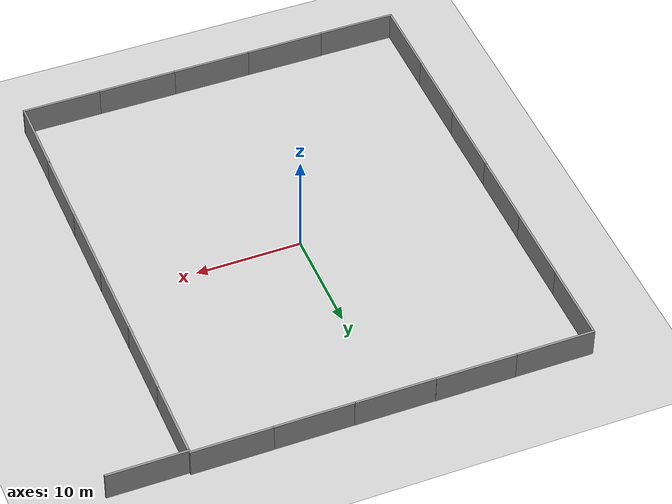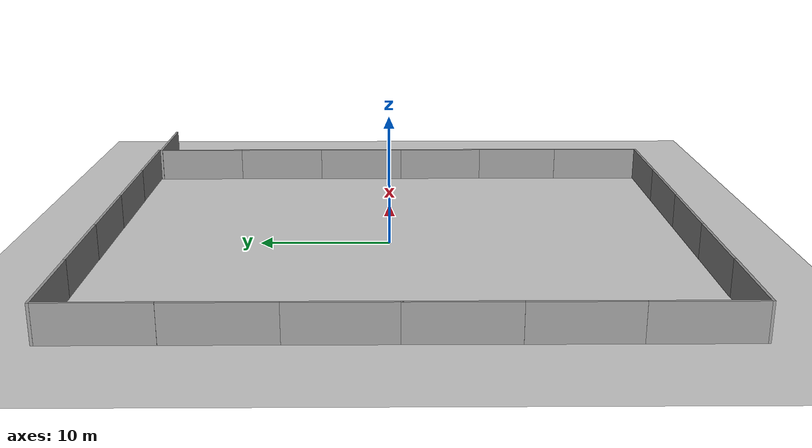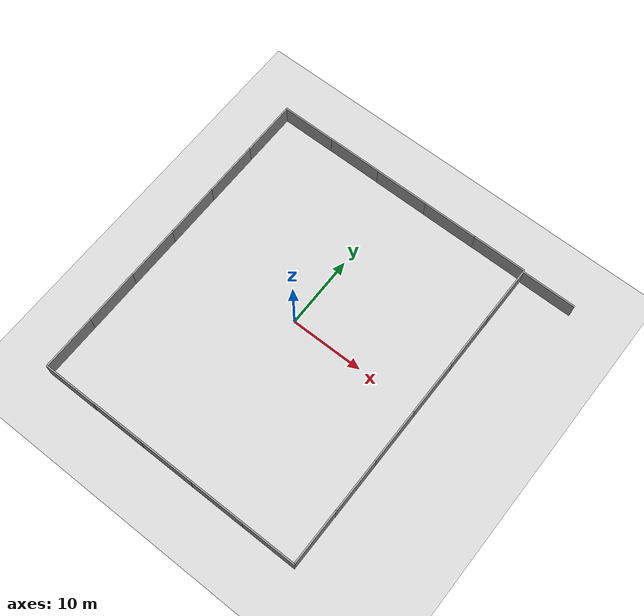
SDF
<sdf version="1.7">
 <world name="default">
  <light name="sun" type="directional">
   <pose>0 0 10 0 -0 0</pose>
   <diffuse>0.8 0.8 0.8 1</diffuse>
   <specular>0.2 0.2 0.2 1</specular>
   <attenuation>
    <range>1000</range>
    <constant>0.9</constant>
    <linear>0.01</linear>
    <quadratic>0.001</quadratic>
   </attenuation>
   <direction>-0.5 0.1 -0.9</direction>
   <spot><inner_angle>0</inner_angle><outer_angle>0</outer_angle><falloff>0</falloff></spot>
  </light>
  <model name="ground_plane">
   <static>1</static>
   <link name="link">
    <collision name="collision">
     <geometry><plane><normal>0 0 1</normal><size>100 100</size></plane></geometry>
     <surface><friction><ode><mu>100</mu><mu2>50</mu2></ode></friction></surface>
    </collision>
    <visual name="visual">
     <cast_shadows>0</cast_shadows>
     <geometry><plane><normal>0 0 1</normal><size>100 100</size></plane></geometry>
     <material>
      <script><uri>file://media/materials/scripts/gazebo.material</uri><name>Gazebo/Grey</name></script>
     </material>
    </visual>
   </link>
  </model>
  <gravity>0 0 -9.8</gravity>
  <magnetic_field>6e-06 2.3e-05 -4.2e-05</magnetic_field>
  <atmosphere type="adiabatic"/>
  <physics type="ode">
   <max_step_size>0.001</max_step_size>
   <real_time_factor>1</real_time_factor>
   <real_time_update_rate>1000</real_time_update_rate>
  </physics>
  <scene><ambient>0.4 0.4 0.4 1</ambient><background>0.7 0.7 0.7 1</background><shadows>1</shadows></scene>
  <spherical_coordinates>
   <surface_model>EARTH_WGS84</surface_model>
   <latitude_deg>50.7163055556</latitude_deg>
   <longitude_deg>10.4501444444</longitude_deg>
   <elevation>0</elevation>
   <heading_deg>180</heading_deg>
  </spherical_coordinates>
  <light name="user_directional_light_0" type="directional">
   <pose>-5.63054 -11.2657 1 0 -0 0</pose>
   <diffuse>0.5 0.5 0.5 1</diffuse>
   <specular>0.1 0.1 0.1 1</specular>
   <direction>0.1 0.1 -0.9</direction>
   <attenuation>
    <range>20</range>
    <constant>0.5</constant>
    <linear>0.01</linear>
    <quadratic>0.001</quadratic>
   </attenuation>
   <spot><inner_angle>0</inner_angle><outer_angle>0</outer_angle><falloff>0</falloff></spot>
  </light>
  <light name="user_directional_light_1" type="directional">
   <pose>10.4762 9.60881 1 0 -0 0</pose>
   <diffuse>0.5 0.5 0.5 1</diffuse>
   <specular>0.1 0.1 0.1 1</specular>
   <direction>0.1 0.1 -0.9</direction>
   <attenuation>
    <range>20</range>
    <constant>0.5</constant>
    <linear>0.01</linear>
    <quadratic>0.001</quadratic>
   </attenuation>
   <spot><inner_angle>0</inner_angle><outer_angle>0</outer_angle><falloff>0</falloff></spot>
  </light>
  <audio><device>default</device></audio>
  <model name="grey_wall">
   <static>1</static>
   <link name="link">
    <pose>0 0 1.4 0 -0 0</pose>
    <collision name="collision"><geometry><box><size>7.5 0.2 2.8</size></box></geometry></collision>
    <visual name="visual">
     <cast_shadows>0</cast_shadows>
     <geometry><box><size>7.5 0.2 2.8</size></box></geometry>
     <material>
      <script>
       <uri>model://grey_wall/materials/scripts</uri>
       <uri>model://grey_wall/materials/textures</uri>
       <name>vrc/grey_wall</name>
      </script>
     </material>
    </visual>
   </link>
   <pose>-14.9489 -23.2032 0 0 -0 0</pose>
  </model>
  <model name="grey_wall_clone">
   <static>1</static>
   <link name="link">
    <pose>0 0 1.4 0 -0 0</pose>
    <collision name="collision"><geometry><box><size>7.5 0.2 2.8</size></box></geometry></collision>
    <visual name="visual">
     <cast_shadows>0</cast_shadows>
     <geometry><box><size>7.5 0.2 2.8</size></box></geometry>
     <material>
      <script>
       <uri>model://grey_wall/materials/scripts</uri>
       <uri>model://grey_wall/materials/textures</uri>
       <name>vrc/grey_wall</name>
      </script>
     </material>
    </visual>
   </link>
   <pose>-7.5546 -23.1759 0 0 -0 0</pose>
  </model>
  <model name="grey_wall_clone_0">
   <static>1</static>
   <link name="link">
    <pose>0 0 1.4 0 -0 0</pose>
    <collision name="collision"><geometry><box><size>7.5 0.2 2.8</size></box></geometry></collision>
    <visual name="visual">
     <cast_shadows>0</cast_shadows>
     <geometry><box><size>7.5 0.2 2.8</size></box></geometry>
     <material>
      <script>
       <uri>model://grey_wall/materials/scripts</uri>
       <uri>model://grey_wall/materials/textures</uri>
       <name>vrc/grey_wall</name>
      </script>
     </material>
    </visual>
   </link>
   <pose>-0.078213 -23.1732 0 0 -0 0</pose>
  </model>
  <model name="grey_wall_clone_1">
   <static>1</static>
   <link name="link">
    <pose>0 0 1.4 0 -0 0</pose>
    <collision name="collision"><geometry><box><size>7.5 0.2 2.8</size></box></geometry></collision>
    <visual name="visual">
     <cast_shadows>0</cast_shadows>
     <geometry><box><size>7.5 0.2 2.8</size></box></geometry>
     <material>
      <script>
       <uri>model://grey_wall/materials/scripts</uri>
       <uri>model://grey_wall/materials/textures</uri>
       <name>vrc/grey_wall</name>
      </script>
     </material>
    </visual>
   </link>
   <pose>7.38315 -23.1704 0 0 -0 0</pose>
  </model>
  <model name="grey_wall_clone_2">
   <static>1</static>
   <link name="link">
    <pose>0 0 1.4 0 -0 0</pose>
    <collision name="collision"><geometry><box><size>7.5 0.2 2.8</size></box></geometry></collision>
    <visual name="visual">
     <cast_shadows>0</cast_shadows>
     <geometry><box><size>7.5 0.2 2.8</size></box></geometry>
     <material>
      <script>
       <uri>model://grey_wall/materials/scripts</uri>
       <uri>model://grey_wall/materials/textures</uri>
       <name>vrc/grey_wall</name>
      </script>
     </material>
    </visual>
   </link>
   <pose>14.8815 -23.168 0 0 -0 0</pose>
  </model>
  <model name="grey_wall_clone_3">
   <static>1</static>
   <link name="link">
    <pose>0 0 1.4 0 -0 0</pose>
    <collision name="collision"><geometry><box><size>7.5 0.2 2.8</size></box></geometry></collision>
    <visual name="visual">
     <cast_shadows>0</cast_shadows>
     <geometry><box><size>7.5 0.2 2.8</size></box></geometry>
     <material>
      <script>
       <uri>model://grey_wall/materials/scripts</uri>
       <uri>model://grey_wall/materials/textures</uri>
       <name>vrc/grey_wall</name>
      </script>
     </material>
    </visual>
   </link>
   <pose>18.5254 -19.3083 0 0 -0 1.57178</pose>
  </model>
  <model name="grey_wall_clone_3_clone">
   <static>1</static>
   <link name="link">
    <pose>0 0 1.4 0 -0 0</pose>
    <collision name="collision"><geometry><box><size>7.5 0.2 2.8</size></box></geometry></collision>
    <visual name="visual">
     <cast_shadows>0</cast_shadows>
     <geometry><box><size>7.5 0.2 2.8</size></box></geometry>
     <material>
      <script>
       <uri>model://grey_wall/materials/scripts</uri>
       <uri>model://grey_wall/materials/textures</uri>
       <name>vrc/grey_wall</name>
      </script>
     </material>
    </visual>
   </link>
   <pose>18.5322 -12.1204 0 0 -0 1.57178</pose>
  </model>
  <model name="grey_wall_clone_3_clone_0">
   <static>1</static>
   <link name="link">
    <pose>0 0 1.4 0 -0 0</pose>
    <collision name="collision"><geometry><box><size>7.5 0.2 2.8</size></box></geometry></collision>
    <visual name="visual">
     <cast_shadows>0</cast_shadows>
     <geometry><box><size>7.5 0.2 2.8</size></box></geometry>
     <material>
      <script>
       <uri>model://grey_wall/materials/scripts</uri>
       <uri>model://grey_wall/materials/textures</uri>
       <name>vrc/grey_wall</name>
      </script>
     </material>
    </visual>
   </link>
   <pose>18.5177 -4.73008 0 0 -0 1.57178</pose>
  </model>
  <model name="grey_wall_clone_3_clone_1">
   <static>1</static>
   <link name="link">
    <pose>0 0 1.4 0 -0 0</pose>
    <collision name="collision"><geometry><box><size>7.5 0.2 2.8</size></box></geometry></collision>
    <visual name="visual">
     <cast_shadows>0</cast_shadows>
     <geometry><box><size>7.5 0.2 2.8</size></box></geometry>
     <material>
      <script>
       <uri>model://grey_wall/materials/scripts</uri>
       <uri>model://grey_wall/materials/textures</uri>
       <name>vrc/grey_wall</name>
      </script>
     </material>
    </visual>
   </link>
   <pose>18.5034 2.69779 0 0 -0 1.57178</pose>
  </model>
  <model name="grey_wall_clone_3_clone_2">
   <static>1</static>
   <link name="link">
    <pose>0 0 1.4 0 -0 0</pose>
    <collision name="collision"><geometry><box><size>7.5 0.2 2.8</size></box></geometry></collision>
    <visual name="visual">
     <cast_shadows>0</cast_shadows>
     <geometry><box><size>7.5 0.2 2.8</size></box></geometry>
     <material>
      <script>
       <uri>model://grey_wall/materials/scripts</uri>
       <uri>model://grey_wall/materials/textures</uri>
       <name>vrc/grey_wall</name>
      </script>
     </material>
    </visual>
   </link>
   <pose>18.4886 10.1808 0 0 -0 1.57178</pose>
  </model>
  <model name="grey_wall_clone_3_clone_3">
   <static>1</static>
   <link name="link">
    <pose>0 0 1.4 0 -0 0</pose>
    <collision name="collision"><geometry><box><size>7.5 0.2 2.8</size></box></geometry></collision>
    <visual name="visual">
     <cast_shadows>0</cast_shadows>
     <geometry><box><size>7.5 0.2 2.8</size></box></geometry>
     <material>
      <script>
       <uri>model://grey_wall/materials/scripts</uri>
       <uri>model://grey_wall/materials/textures</uri>
       <name>vrc/grey_wall</name>
      </script>
     </material>
    </visual>
   </link>
   <pose>18.487 17.6241 0 0 -0 1.57178</pose>
  </model>
  <model name="grey_wall_clone_3_clone_4">
   <static>1</static>
   <link name="link">
    <pose>0 0 1.4 0 -0 0</pose>
    <collision name="collision"><geometry><box><size>7.5 0.2 2.8</size></box></geometry></collision>
    <visual name="visual">
     <cast_shadows>0</cast_shadows>
     <geometry><box><size>7.5 0.2 2.8</size></box></geometry>
     <material>
      <script>
       <uri>model://grey_wall/materials/scripts</uri>
       <uri>model://grey_wall/materials/textures</uri>
       <name>vrc/grey_wall</name>
      </script>
     </material>
    </visual>
   </link>
   <pose>-18.6048 -19.3704 0 0 -0 1.57178</pose>
  </model>
  <model name="grey_wall_clone_3_clone_5">
   <static>1</static>
   <link name="link">
    <pose>0 0 1.4 0 -0 0</pose>
    <collision name="collision"><geometry><box><size>7.5 0.2 2.8</size></box></geometry></collision>
    <visual name="visual">
     <cast_shadows>0</cast_shadows>
     <geometry><box><size>7.5 0.2 2.8</size></box></geometry>
     <material>
      <script>
       <uri>model://grey_wall/materials/scripts</uri>
       <uri>model://grey_wall/materials/textures</uri>
       <name>vrc/grey_wall</name>
      </script>
     </material>
    </visual>
   </link>
   <pose>-18.6067 -11.969 0 0 -0 1.57178</pose>
  </model>
  <model name="grey_wall_clone_3_clone_6">
   <static>1</static>
   <link name="link">
    <pose>0 0 1.4 0 -0 0</pose>
    <collision name="collision"><geometry><box><size>7.5 0.2 2.8</size></box></geometry></collision>
    <visual name="visual">
     <cast_shadows>0</cast_shadows>
     <geometry><box><size>7.5 0.2 2.8</size></box></geometry>
     <material>
      <script>
       <uri>model://grey_wall/materials/scripts</uri>
       <uri>model://grey_wall/materials/textures</uri>
       <name>vrc/grey_wall</name>
      </script>
     </material>
    </visual>
   </link>
   <pose>-18.5966 -4.47081 0 0 -0 1.57178</pose>
  </model>
  <model name="grey_wall_clone_3_clone_7">
   <static>1</static>
   <link name="link">
    <pose>0 0 1.4 0 -0 0</pose>
    <collision name="collision"><geometry><box><size>7.5 0.2 2.8</size></box></geometry></collision>
    <visual name="visual">
     <cast_shadows>0</cast_shadows>
     <geometry><box><size>7.5 0.2 2.8</size></box></geometry>
     <material>
      <script>
       <uri>model://grey_wall/materials/scripts</uri>
       <uri>model://grey_wall/materials/textures</uri>
       <name>vrc/grey_wall</name>
      </script>
     </material>
    </visual>
   </link>
   <pose>-18.5952 2.842 0 0 -0 1.57178</pose>
  </model>
  <model name="grey_wall_clone_3_clone_8">
   <static>1</static>
   <link name="link">
    <pose>0 0 1.4 0 -0 0</pose>
    <collision name="collision"><geometry><box><size>7.5 0.2 2.8</size></box></geometry></collision>
    <visual name="visual">
     <cast_shadows>0</cast_shadows>
     <geometry><box><size>7.5 0.2 2.8</size></box></geometry>
     <material>
      <script>
       <uri>model://grey_wall/materials/scripts</uri>
       <uri>model://grey_wall/materials/textures</uri>
       <name>vrc/grey_wall</name>
      </script>
     </material>
    </visual>
   </link>
   <pose>-18.5888 10.3438 0 0 -0 1.57178</pose>
  </model>
  <model name="grey_wall_clone_3_clone_9">
   <static>1</static>
   <link name="link">
    <pose>0 0 1.4 0 -0 0</pose>
    <collision name="collision"><geometry><box><size>7.5 0.2 2.8</size></box></geometry></collision>
    <visual name="visual">
     <cast_shadows>0</cast_shadows>
     <geometry><box><size>7.5 0.2 2.8</size></box></geometry>
     <material>
      <script>
       <uri>model://grey_wall/materials/scripts</uri>
       <uri>model://grey_wall/materials/textures</uri>
       <name>vrc/grey_wall</name>
      </script>
     </material>
    </visual>
   </link>
   <pose>-18.594 17.8486 0 0 -0 1.57178</pose>
  </model>
  <model name="grey_wall_clone_4">
   <static>1</static>
   <link name="link">
    <pose>0 0 1.4 0 -0 0</pose>
    <collision name="collision"><geometry><box><size>7.5 0.2 2.8</size></box></geometry></collision>
    <visual name="visual">
     <cast_shadows>0</cast_shadows>
     <geometry><box><size>7.5 0.2 2.8</size></box></geometry>
     <material>
      <script>
       <uri>model://grey_wall/materials/scripts</uri>
       <uri>model://grey_wall/materials/textures</uri>
       <name>vrc/grey_wall</name>
      </script>
     </material>
    </visual>
   </link>
   <pose>-14.9356 21.7034 0 0 -0 0</pose>
  </model>
  <model name="grey_wall_clone_5">
   <static>1</static>
   <link name="link">
    <pose>0 0 1.4 0 -0 0</pose>
    <collision name="collision"><geometry><box><size>7.5 0.2 2.8</size></box></geometry></collision>
    <visual name="visual">
     <cast_shadows>0</cast_shadows>
     <geometry><box><size>7.5 0.2 2.8</size></box></geometry>
     <material>
      <script>
       <uri>model://grey_wall/materials/scripts</uri>
       <uri>model://grey_wall/materials/textures</uri>
       <name>vrc/grey_wall</name>
      </script>
     </material>
    </visual>
   </link>
   <pose>-7.52812 21.7162 0 0 -0 0</pose>
  </model>
  <model name="grey_wall_clone_6">
   <static>1</static>
   <link name="link">
    <pose>0 0 1.4 0 -0 0</pose>
    <collision name="collision"><geometry><box><size>7.5 0.2 2.8</size></box></geometry></collision>
    <visual name="visual">
     <cast_shadows>0</cast_shadows>
     <geometry><box><size>7.5 0.2 2.8</size></box></geometry>
     <material>
      <script>
       <uri>model://grey_wall/materials/scripts</uri>
       <uri>model://grey_wall/materials/textures</uri>
       <name>vrc/grey_wall</name>
      </script>
     </material>
    </visual>
   </link>
   <pose>-0.03151 21.6973 0 0 -0 0</pose>
  </model>
  <model name="grey_wall_clone_7">
   <static>1</static>
   <link name="link">
    <pose>0 0 1.4 0 -0 0</pose>
    <collision name="collision"><geometry><box><size>7.5 0.2 2.8</size></box></geometry></collision>
    <visual name="visual">
     <cast_shadows>0</cast_shadows>
     <geometry><box><size>7.5 0.2 2.8</size></box></geometry>
     <material>
      <script>
       <uri>model://grey_wall/materials/scripts</uri>
       <uri>model://grey_wall/materials/textures</uri>
       <name>vrc/grey_wall</name>
      </script>
     </material>
    </visual>
   </link>
   <pose>7.4004 21.686 0 0 -0 0</pose>
  </model>
  <model name="grey_wall_clone_8">
   <static>1</static>
   <link name="link">
    <pose>0 0 1.4 0 -0 0</pose>
    <collision name="collision"><geometry><box><size>7.5 0.2 2.8</size></box></geometry></collision>
    <visual name="visual">
     <cast_shadows>0</cast_shadows>
     <geometry><box><size>7.5 0.2 2.8</size></box></geometry>
     <material>
      <script>
       <uri>model://grey_wall/materials/scripts</uri>
       <uri>model://grey_wall/materials/textures</uri>
       <name>vrc/grey_wall</name>
      </script>
     </material>
    </visual>
   </link>
   <pose>14.7533 21.697 0 0 -0 0</pose>
  </model>
  <model name="grey_wall_clone_9">
   <static>1</static>
   <link name="link">
    <pose>0 0 1.4 0 -0 0</pose>
    <collision name="collision"><geometry><box><size>7.5 0.2 2.8</size></box></geometry></collision>
    <visual name="visual">
     <cast_shadows>0</cast_shadows>
     <geometry><box><size>7.5 0.2 2.8</size></box></geometry>
     <material>
      <script>
       <uri>model://grey_wall/materials/scripts</uri>
       <uri>model://grey_wall/materials/textures</uri>
       <name>vrc/grey_wall</name>
      </script>
     </material>
    </visual>
   </link>
   <pose>22.1318 21.4842 0 0 -0 0</pose>
  </model>
 </world>
</sdf>
